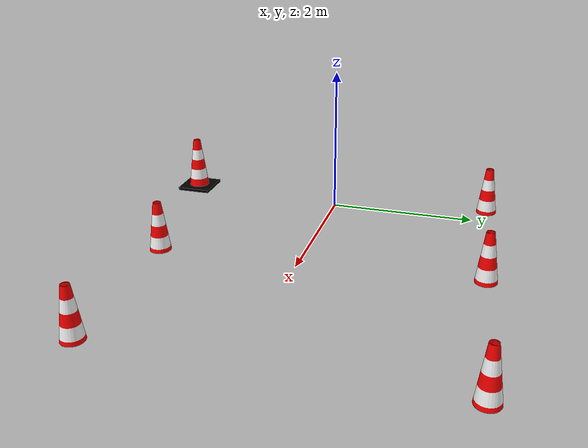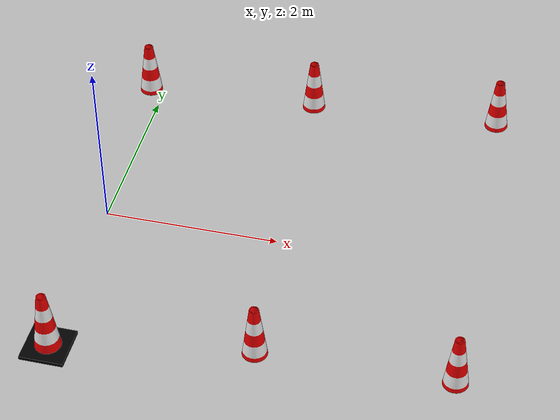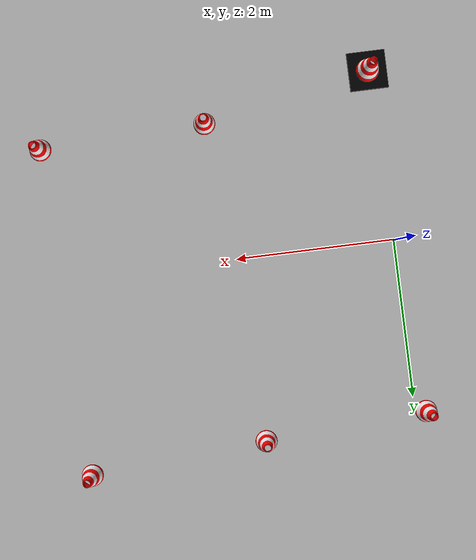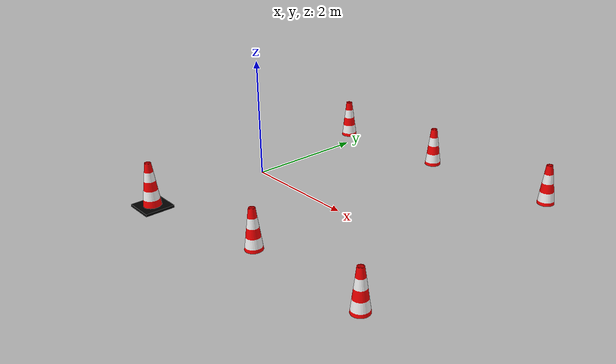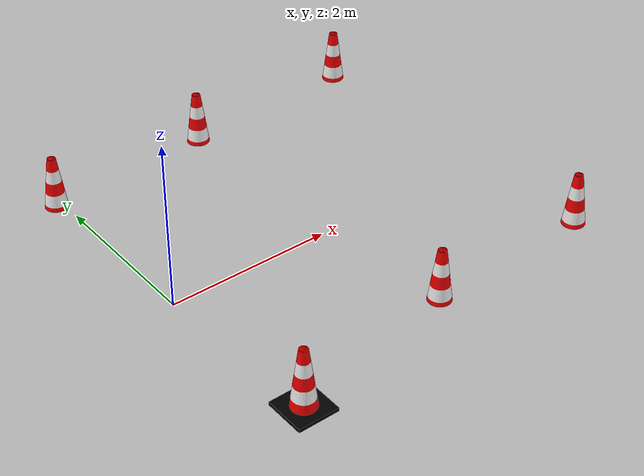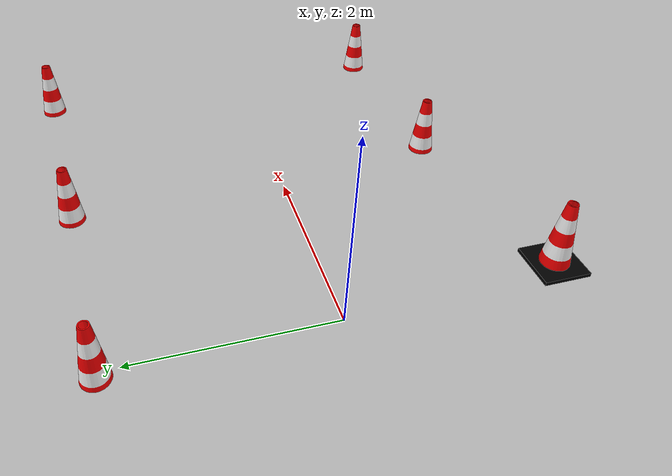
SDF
<sdf version="1.6">
 <world name="default">
  <light name="sun" type="directional">
   <pose>0 0 10 0 -0 0</pose>
   <diffuse>0.8 0.8 0.8 1</diffuse>
   <specular>0.2 0.2 0.2 1</specular>
   <attenuation>
    <range>1000</range>
    <constant>0.9</constant>
    <linear>0.01</linear>
    <quadratic>0.001</quadratic>
   </attenuation>
   <direction>-0.5 0.1 -0.9</direction>
  </light>
  <gravity>0 0 -9.8</gravity>
  <magnetic_field>6e-06 2.3e-05 -4.2e-05</magnetic_field>
  <atmosphere type="adiabatic"/>
  <physics name="default_physics" default="0" type="ode">
   <max_step_size>0.001</max_step_size>
   <real_time_factor>1</real_time_factor>
   <real_time_update_rate>1000</real_time_update_rate>
  </physics>
  <scene><ambient>0.4 0.4 0.4 1</ambient><background>0.7 0.7 0.7 1</background><shadows>1</shadows></scene>
  <spherical_coordinates>
   <surface_model>EARTH_WGS84</surface_model>
   <latitude_deg>0</latitude_deg>
   <longitude_deg>0</longitude_deg>
   <elevation>0</elevation>
   <heading_deg>0</heading_deg>
  </spherical_coordinates>
  <model name="race_track">
   <static>1</static>
   <link name="link">
    <collision name="collision"><geometry><box><size>530 830 0.2</size></box></geometry></collision>
    <visual name="visual">
     <cast_shadows>0</cast_shadows>
     <geometry><box><size>530 830 0.2</size></box></geometry>
     <material>
      <script>
       <uri>model://race_track/materials/scripts</uri>
       <uri>model://race_track/materials/textures</uri>
       <name>vrc/race_track</name>
      </script>
     </material>
    </visual>
   </link>
   <pose>-106.712 -289.861 0 0 -0 2.30648</pose>
  </model>
  <model name="traffic_cone_75cm_001">
   <static>1</static>
   <link name="link">
    <collision name="collision">
     <pose>0 0 0.375 1.5707 -0 0</pose>
     <geometry><box><size>0.48 0.75 0.48</size></box></geometry>
    </collision>
    <visual name="visual">
     <pose>0 0 0 1.5707 -0 0</pose>
     <geometry><mesh><uri>model://traffic_cone_75cm_001/meshes/Traffic_Cone_75cm.dae</uri></mesh></geometry>
    </visual>
   </link>
   <pose>-0.131575 2.18775 0 0 -0 0</pose>
  </model>
  <model name="traffic_cone_75cm_001_0">
   <static>1</static>
   <link name="link">
    <collision name="collision">
     <pose>0 0 0.375 1.5707 -0 0</pose>
     <geometry><box><size>0.48 0.75 0.48</size></box></geometry>
    </collision>
    <visual name="visual">
     <pose>0 0 0 1.5707 -0 0</pose>
     <geometry><mesh><uri>model://traffic_cone_75cm_001/meshes/Traffic_Cone_75cm.dae</uri></mesh></geometry>
    </visual>
   </link>
   <pose>0.07381 -2.15301 0.1 0 -0 0</pose>
  </model>
  <model name="traffic_cone_75cm_001_1">
   <static>1</static>
   <link name="link">
    <collision name="collision">
     <pose>0 0 0.375 1.5707 -0 0</pose>
     <geometry><box><size>0.48 0.75 0.48</size></box></geometry>
    </collision>
    <visual name="visual">
     <pose>0 0 0 1.5707 -0 0</pose>
     <geometry><mesh><uri>model://traffic_cone_75cm_001/meshes/Traffic_Cone_75cm.dae</uri></mesh></geometry>
    </visual>
   </link>
   <pose>1.90944 2.314 0 0 -0 0</pose>
  </model>
  <model name="traffic_cone_75cm_001_2">
   <static>1</static>
   <link name="link">
    <collision name="collision">
     <pose>0 0 0.375 1.5707 -0 0</pose>
     <geometry><box><size>0.48 0.75 0.48</size></box></geometry>
    </collision>
    <visual name="visual">
     <pose>0 0 0 1.5707 -0 0</pose>
     <geometry><mesh><uri>model://traffic_cone_75cm_001/meshes/Traffic_Cone_75cm.dae</uri></mesh></geometry>
    </visual>
   </link>
   <pose>2.18943 -1.74413 0 0 -0 0</pose>
  </model>
  <model name="traffic_cone_75cm_001_3">
   <static>1</static>
   <link name="link">
    <collision name="collision">
     <pose>0 0 0.375 1.5707 -0 0</pose>
     <geometry><box><size>0.48 0.75 0.48</size></box></geometry>
    </collision>
    <visual name="visual">
     <pose>0 0 0 1.5707 -0 0</pose>
     <geometry><mesh><uri>model://traffic_cone_75cm_001/meshes/Traffic_Cone_75cm.dae</uri></mesh></geometry>
    </visual>
   </link>
   <pose>4.27799 -1.67109 0 0 -0 0</pose>
  </model>
  <model name="traffic_cone_75cm_001_4">
   <static>1</static>
   <link name="link">
    <collision name="collision">
     <pose>0 0 0.375 1.5707 -0 0</pose>
     <geometry><box><size>0.48 0.75 0.48</size></box></geometry>
    </collision>
    <visual name="visual">
     <pose>0 0 0 1.5707 -0 0</pose>
     <geometry><mesh><uri>model://traffic_cone_75cm_001/meshes/Traffic_Cone_75cm.dae</uri></mesh></geometry>
    </visual>
   </link>
   <pose>4.13349 2.46902 0 0 -0 0</pose>
  </model>
 </world>
</sdf>
